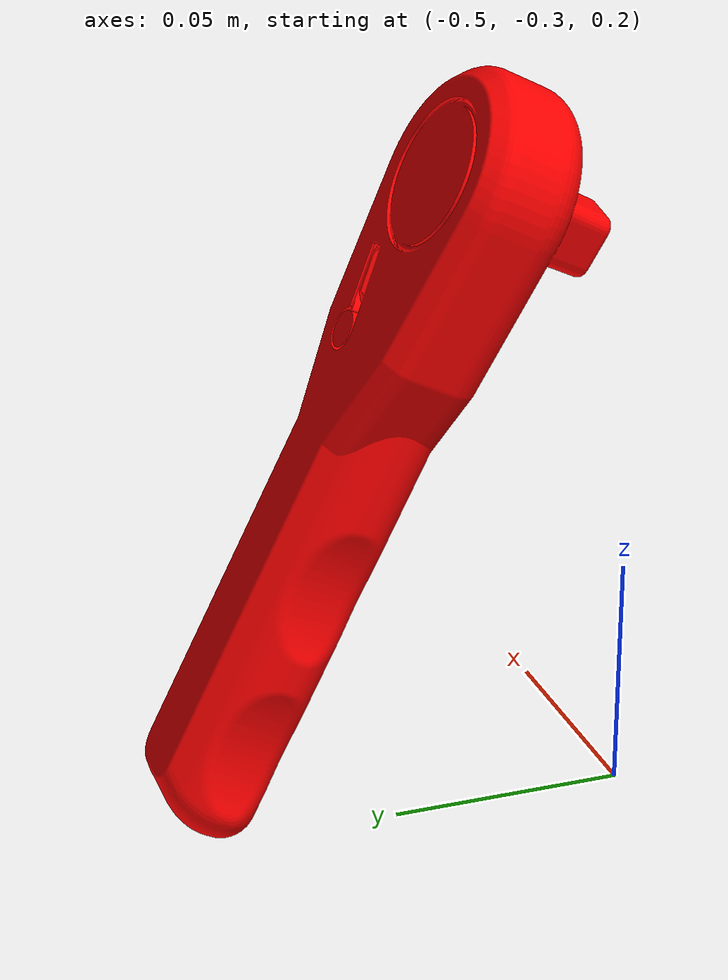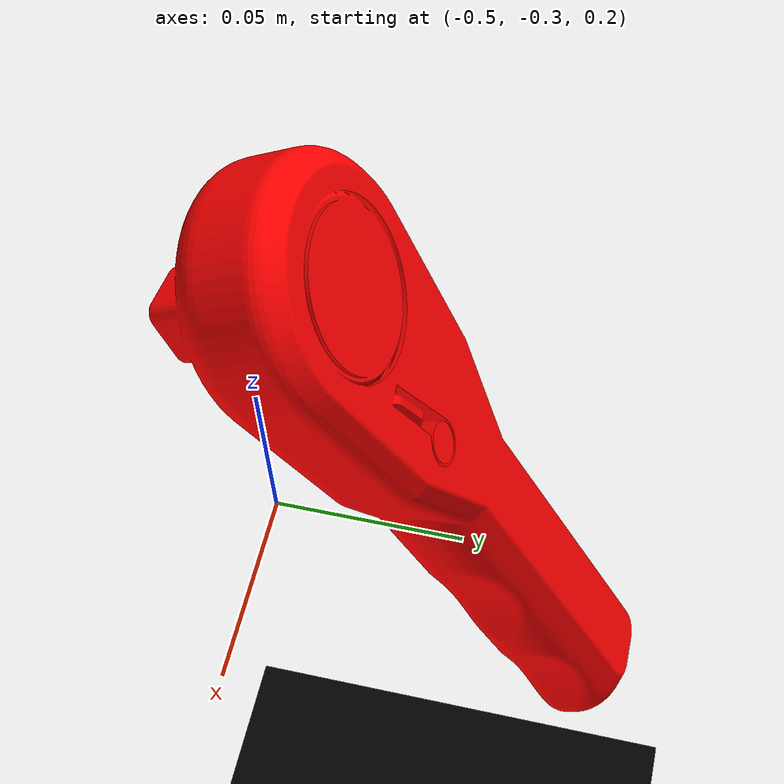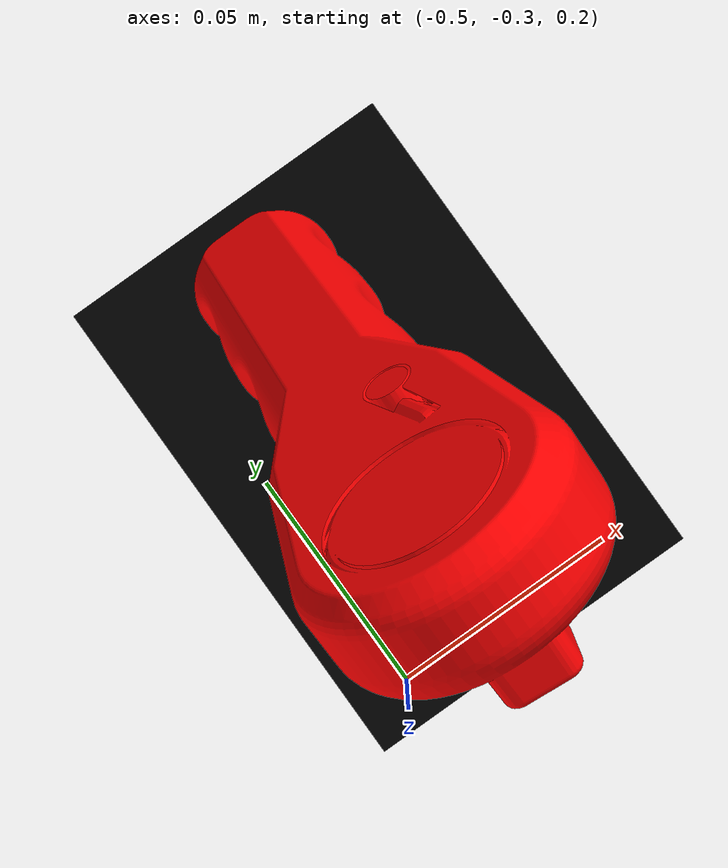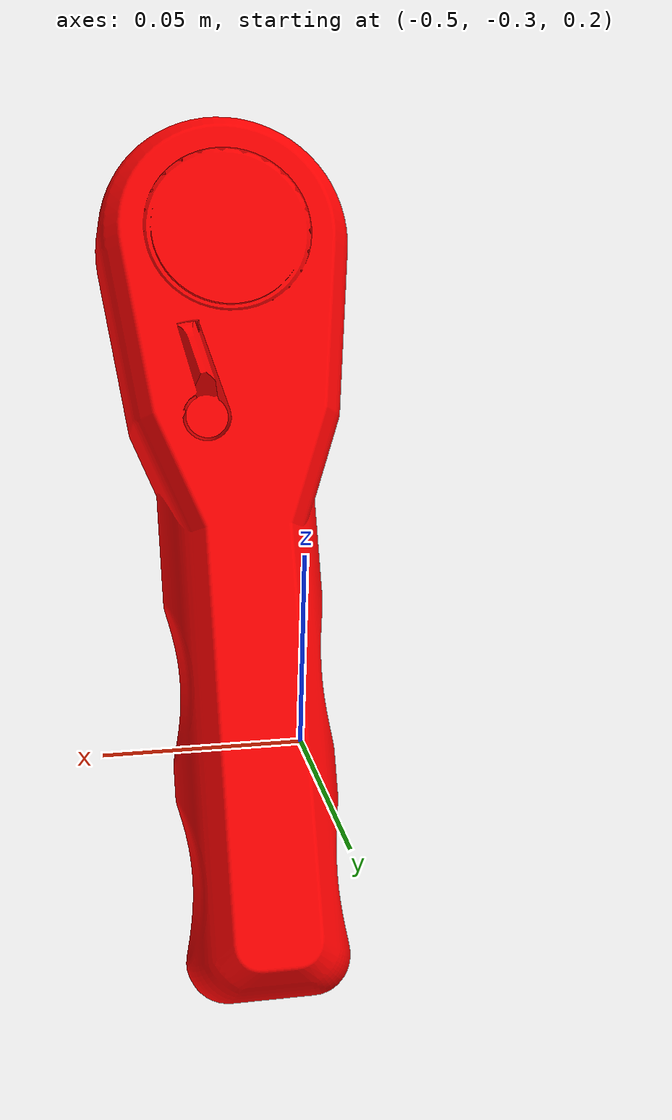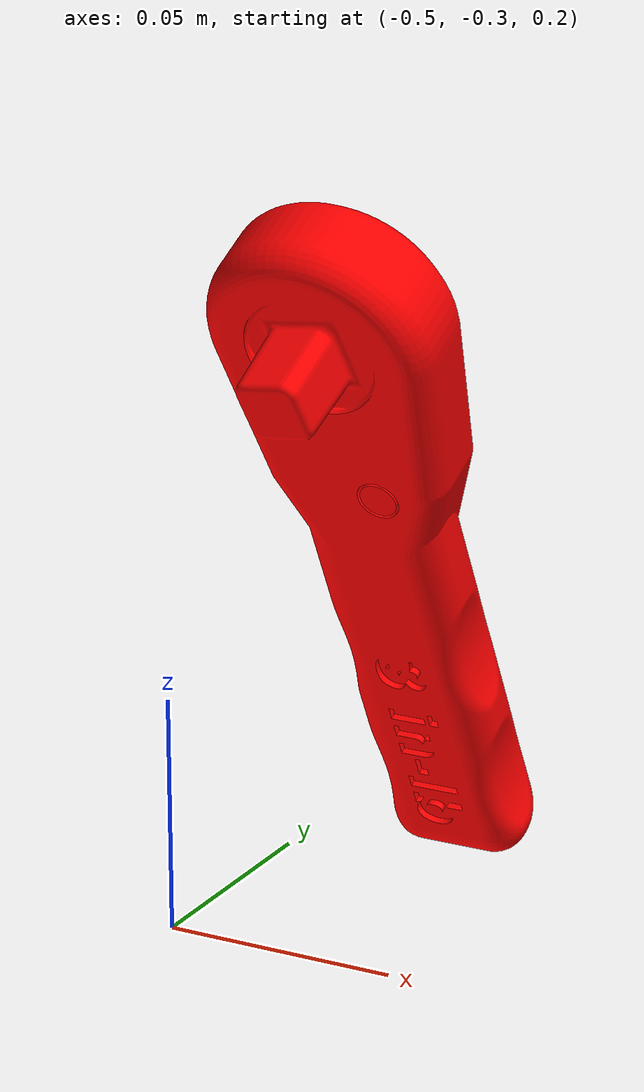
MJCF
<mujoco model="arm2d2">
  <compiler angle="radian" meshdir="../meshes/" autolimits="true"/>
  <option integrator="RK4" timestep="0.00025">
    <flag gravity="disable"/>
  </option>
  <size njmax="500" nconmax="100"/>
  <default/>
  <asset>
    <texture type="skybox" builtin="gradient" rgb1=".03 .05 .07" rgb2="0 0 0" width="512" height="512"/>
    <mesh file="wrench.stl" scale=".0015 .0015 .0015"/>
  </asset>
  <worldbody>
      <light diffuse=".5 .5 .5" pos="0 0 3" dir="0 0 -1"/>
      <geom type="plane" size="5 5 0.1" rgba="0 0 0 0.1"/>
      <body name="wrench" pos="-0.5 -0.2 0.2">
          <joint type="free"/>
          <geom type="mesh" mesh="wrench" euler="90 0 0" rgba="1 0 0 1"/>
      </body>
  </worldbody>
</mujoco>
